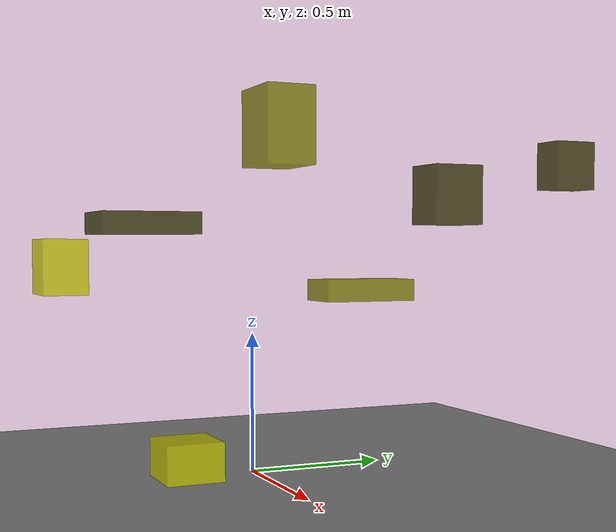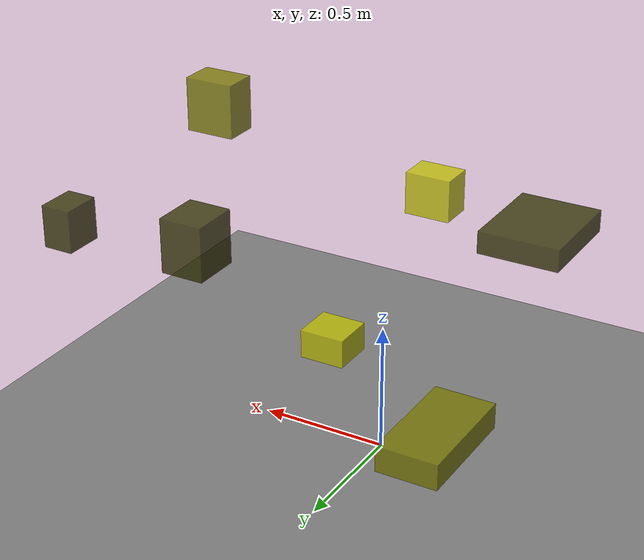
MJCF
<?xml version="1.0"?>
<mujoco model="obstacle_scene">
  <compiler angle="radian" coordinate="local"/>
  <option timestep="0.001" gravity="0 0 -9.81"/>

  <asset>
    <material name="obstacle_mat" rgba="0.8 0.8 0.0 0.8"/>
    <material name="ground_mat" rgba="0.5 0.5 0.5 1"/>
  </asset>

  <worldbody>
    <!-- Ground plane -->
    <geom name="ground" type="plane" size="3 3 0.1" material="ground_mat"/>

    <!-- Obstacles -->
    <body name="obstacle_0" pos="-0.478339 -0.269504 0.900865">
      <geom name="obs_0" type="box" size="0.153353 0.191102 0.042669" rgba="0.2 0.2 0.0 0.8"/>
    </body>
    <body name="obstacle_1" pos="-0.577785 0.724266 0.623620">
      <geom name="obs_1" type="box" size="0.106708 0.204100 0.045693" rgba="0.5 0.5 0.0 0.8"/>
    </body>
    <body name="obstacle_2" pos="0.434073 -0.383822 0.152652">
      <geom name="obs_2" type="box" size="0.095769 0.091463 0.061055" rgba="0.8 0.8 0.0 0.8"/>
    </body>
    <body name="obstacle_3" pos="0.777099 0.776060 1.066786">
      <geom name="obs_3" type="box" size="0.053981 0.070673 0.075450" rgba="0.2 0.2 0.0 0.8"/>
    </body>
    <body name="obstacle_4" pos="0.860665 -0.251028 1.138299">
      <geom name="obs_4" type="box" size="0.098813 0.069454 0.106739" rgba="0.5 0.5 0.0 0.8"/>
    </body>
    <body name="obstacle_5" pos="0.154450 -0.712731 0.746848">
      <geom name="obs_5" type="box" size="0.095911 0.070255 0.088161" rgba="0.8 0.8 0.0 0.8"/>
    </body>
    <body name="obstacle_6" pos="0.428916 0.548068 0.985250">
      <geom name="obs_6" type="box" size="0.080505 0.090233 0.100533" rgba="0.2 0.2 0.0 0.8"/>
    </body>
  </worldbody>
</mujoco>
